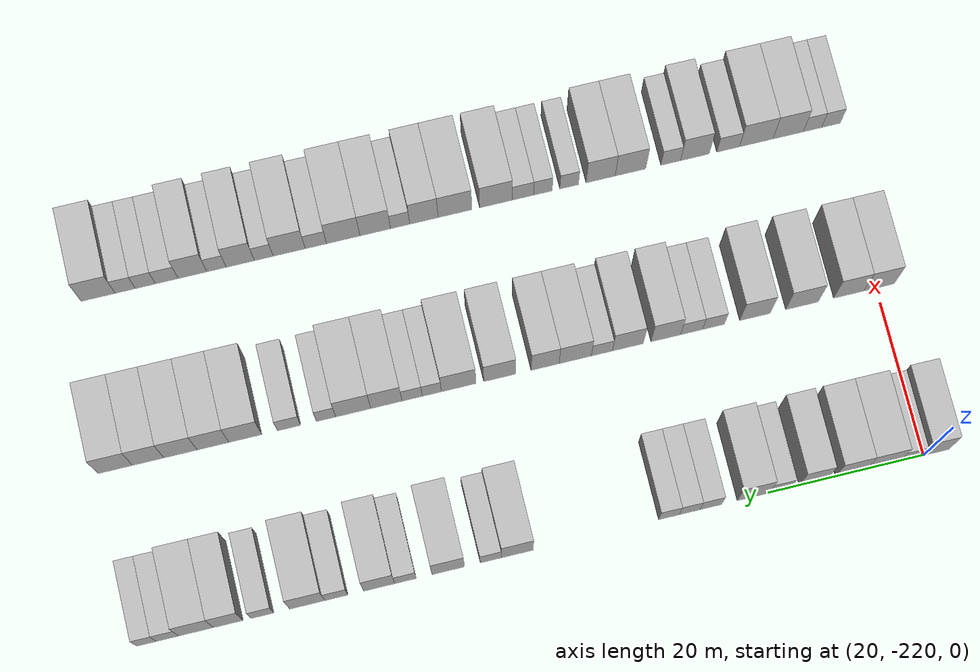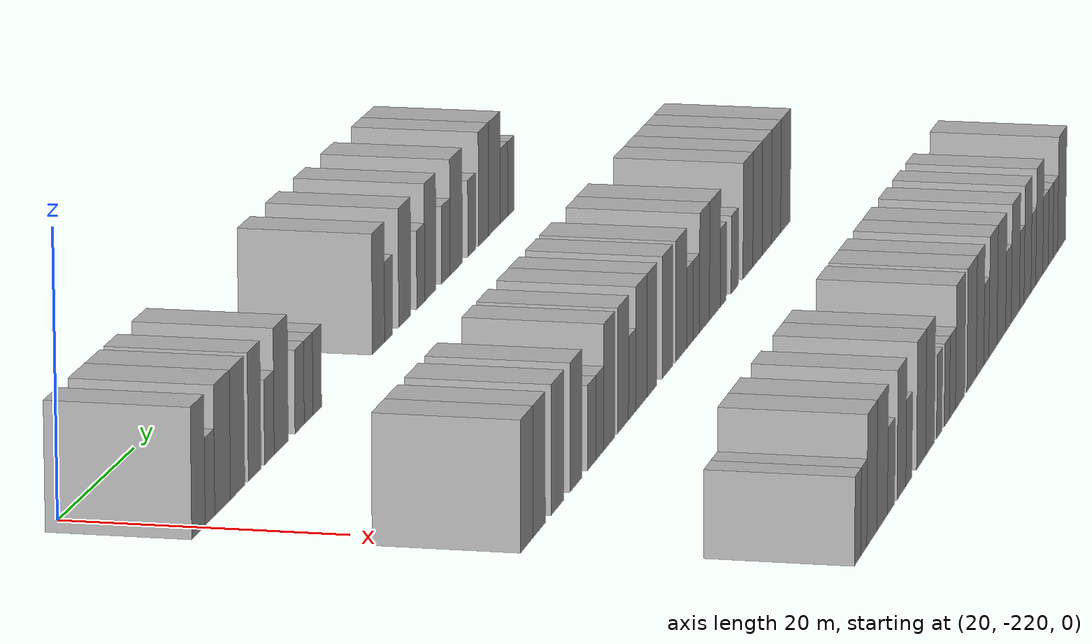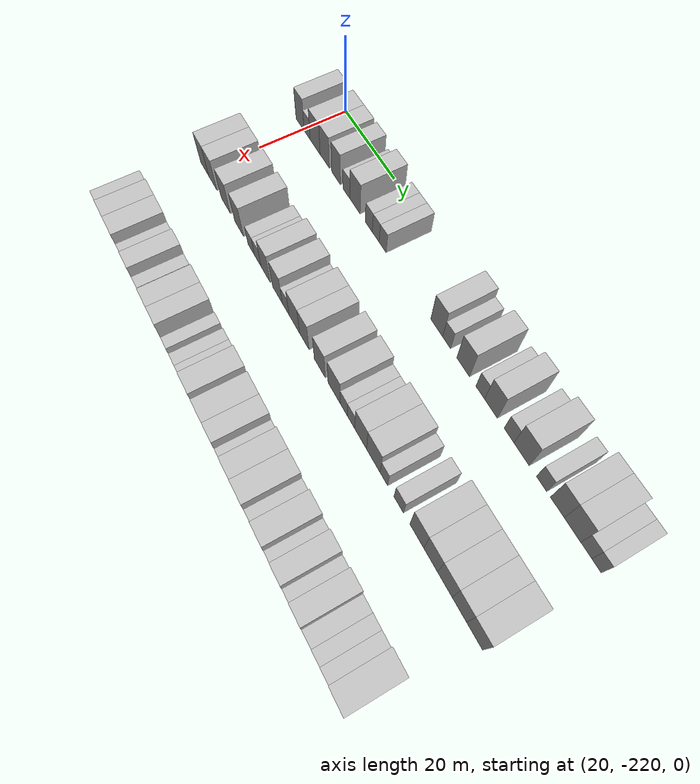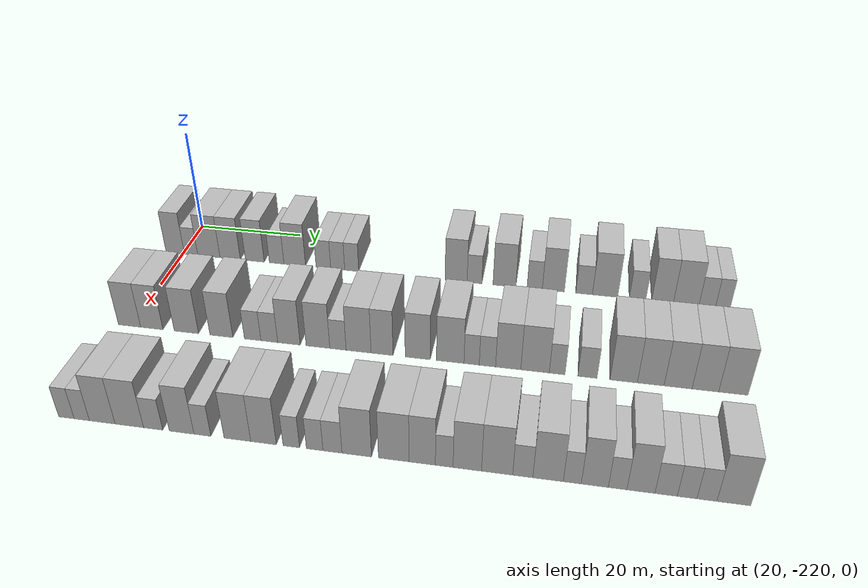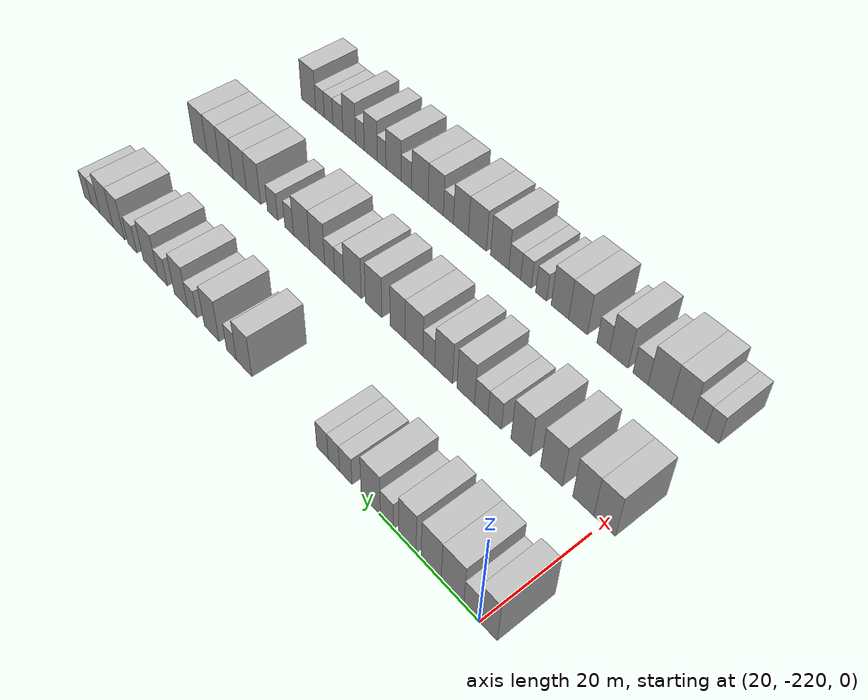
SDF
<sdf version="1.6">
 <world name="default">
  <model name="building_35">
   <static>1</static>
   <pose>25.0000 -221.4238 0 0.000000 0.000000 0.000000</pose>
   <link name="link">
    <pose>0 0 4.50 0 0 0</pose>
    <collision name="collision"><geometry><box><size>10.0000 3.6234 9.0000</size></box></geometry></collision>
    <visual name="visual">
     <cast_shadows>0</cast_shadows>
     <geometry><box><size>10.0000 3.6234 9.0000</size></box></geometry>
     <material>
      <script>
       <uri>model://HANNAS_wall/materials/scripts</uri>
       <uri>model://HANNAS_wall/materials/textures</uri>
       <name>vrc/HANNAS_wall</name>
      </script>
     </material>
    </visual>
   </link>
  </model>
  <model name="building_36">
   <static>1</static>
   <pose>25.0000 -218.2902 0 0.000000 0.000000 0.000000</pose>
   <link name="link">
    <pose>0 0 3.00 0 0 0</pose>
    <collision name="collision"><geometry><box><size>10.0000 2.6437 6.0000</size></box></geometry></collision>
    <visual name="visual">
     <cast_shadows>0</cast_shadows>
     <geometry><box><size>10.0000 2.6437 6.0000</size></box></geometry>
     <material>
      <script>
       <uri>model://HANNAS_wall/materials/scripts</uri>
       <uri>model://HANNAS_wall/materials/textures</uri>
       <name>vrc/HANNAS_wall</name>
      </script>
     </material>
    </visual>
   </link>
  </model>
  <model name="building_37">
   <static>1</static>
   <pose>25.0000 -214.7772 0 0.000000 0.000000 0.000000</pose>
   <link name="link">
    <pose>0 0 4.50 0 0 0</pose>
    <collision name="collision"><geometry><box><size>10.0000 4.3824 9.0000</size></box></geometry></collision>
    <visual name="visual">
     <cast_shadows>0</cast_shadows>
     <geometry><box><size>10.0000 4.3824 9.0000</size></box></geometry>
     <material>
      <script>
       <uri>model://HANNAS_wall/materials/scripts</uri>
       <uri>model://HANNAS_wall/materials/textures</uri>
       <name>vrc/HANNAS_wall</name>
      </script>
     </material>
    </visual>
   </link>
  </model>
  <model name="building_38">
   <static>1</static>
   <pose>25.0000 -210.5929 0 0.000000 0.000000 0.000000</pose>
   <link name="link">
    <pose>0 0 4.50 0 0 0</pose>
    <collision name="collision"><geometry><box><size>10.0000 3.9861 9.0000</size></box></geometry></collision>
    <visual name="visual">
     <cast_shadows>0</cast_shadows>
     <geometry><box><size>10.0000 3.9861 9.0000</size></box></geometry>
     <material>
      <script>
       <uri>model://HANNAS_wall/materials/scripts</uri>
       <uri>model://HANNAS_wall/materials/textures</uri>
       <name>vrc/HANNAS_wall</name>
      </script>
     </material>
    </visual>
   </link>
  </model>
  <model name="building_39">
   <static>1</static>
   <pose>25.0000 -205.7783 0 0.000000 0.000000 0.000000</pose>
   <link name="link">
    <pose>0 0 4.50 0 0 0</pose>
    <collision name="collision"><geometry><box><size>10.0000 3.6431 9.0000</size></box></geometry></collision>
    <visual name="visual">
     <cast_shadows>0</cast_shadows>
     <geometry><box><size>10.0000 3.6431 9.0000</size></box></geometry>
     <material>
      <script>
       <uri>model://HANNAS_wall/materials/scripts</uri>
       <uri>model://HANNAS_wall/materials/textures</uri>
       <name>vrc/HANNAS_wall</name>
      </script>
     </material>
    </visual>
   </link>
  </model>
  <model name="building_40">
   <static>1</static>
   <pose>25.0000 -201.5535 0 0.000000 0.000000 0.000000</pose>
   <link name="link">
    <pose>0 0 3.00 0 0 0</pose>
    <collision name="collision"><geometry><box><size>10.0000 2.8066 6.0000</size></box></geometry></collision>
    <visual name="visual">
     <cast_shadows>0</cast_shadows>
     <geometry><box><size>10.0000 2.8066 6.0000</size></box></geometry>
     <material>
      <script>
       <uri>model://HANNAS_wall/materials/scripts</uri>
       <uri>model://HANNAS_wall/materials/textures</uri>
       <name>vrc/HANNAS_wall</name>
      </script>
     </material>
    </visual>
   </link>
  </model>
  <model name="building_41">
   <static>1</static>
   <pose>25.0000 -198.0791 0 0.000000 0.000000 0.000000</pose>
   <link name="link">
    <pose>0 0 4.50 0 0 0</pose>
    <collision name="collision"><geometry><box><size>10.0000 4.1423 9.0000</size></box></geometry></collision>
    <visual name="visual">
     <cast_shadows>0</cast_shadows>
     <geometry><box><size>10.0000 4.1423 9.0000</size></box></geometry>
     <material>
      <script>
       <uri>model://HANNAS_wall/materials/scripts</uri>
       <uri>model://HANNAS_wall/materials/textures</uri>
       <name>vrc/HANNAS_wall</name>
      </script>
     </material>
    </visual>
   </link>
  </model>
  <model name="building_42">
   <static>1</static>
   <pose>25.0000 -192.6238 0 0.000000 0.000000 0.000000</pose>
   <link name="link">
    <pose>0 0 3.00 0 0 0</pose>
    <collision name="collision"><geometry><box><size>10.0000 2.7682 6.0000</size></box></geometry></collision>
    <visual name="visual">
     <cast_shadows>0</cast_shadows>
     <geometry><box><size>10.0000 2.7682 6.0000</size></box></geometry>
     <material>
      <script>
       <uri>model://HANNAS_wall/materials/scripts</uri>
       <uri>model://HANNAS_wall/materials/textures</uri>
       <name>vrc/HANNAS_wall</name>
      </script>
     </material>
    </visual>
   </link>
  </model>
  <model name="building_43">
   <static>1</static>
   <pose>25.0000 -189.9200 0 0.000000 0.000000 0.000000</pose>
   <link name="link">
    <pose>0 0 3.00 0 0 0</pose>
    <collision name="collision"><geometry><box><size>10.0000 2.6394 6.0000</size></box></geometry></collision>
    <visual name="visual">
     <cast_shadows>0</cast_shadows>
     <geometry><box><size>10.0000 2.6394 6.0000</size></box></geometry>
     <material>
      <script>
       <uri>model://HANNAS_wall/materials/scripts</uri>
       <uri>model://HANNAS_wall/materials/textures</uri>
       <name>vrc/HANNAS_wall</name>
      </script>
     </material>
    </visual>
   </link>
  </model>
  <model name="building_44">
   <static>1</static>
   <pose>25.0000 -187.2783 0 0.000000 0.000000 0.000000</pose>
   <link name="link">
    <pose>0 0 3.00 0 0 0</pose>
    <collision name="collision"><geometry><box><size>10.0000 2.6440 6.0000</size></box></geometry></collision>
    <visual name="visual">
     <cast_shadows>0</cast_shadows>
     <geometry><box><size>10.0000 2.6440 6.0000</size></box></geometry>
     <material>
      <script>
       <uri>model://HANNAS_wall/materials/scripts</uri>
       <uri>model://HANNAS_wall/materials/textures</uri>
       <name>vrc/HANNAS_wall</name>
      </script>
     </material>
    </visual>
   </link>
  </model>
  <model name="building_45">
   <static>1</static>
   <pose>25.0000 -167.9538 0 0.000000 0.000000 0.000000</pose>
   <link name="link">
    <pose>0 0 4.50 0 0 0</pose>
    <collision name="collision"><geometry><box><size>10.0000 4.0017 9.0000</size></box></geometry></collision>
    <visual name="visual">
     <cast_shadows>0</cast_shadows>
     <geometry><box><size>10.0000 4.0017 9.0000</size></box></geometry>
     <material>
      <script>
       <uri>model://HANNAS_wall/materials/scripts</uri>
       <uri>model://HANNAS_wall/materials/textures</uri>
       <name>vrc/HANNAS_wall</name>
      </script>
     </material>
    </visual>
   </link>
  </model>
  <model name="building_46">
   <static>1</static>
   <pose>25.0000 -164.6189 0 0.000000 0.000000 0.000000</pose>
   <link name="link">
    <pose>0 0 3.00 0 0 0</pose>
    <collision name="collision"><geometry><box><size>10.0000 2.6681 6.0000</size></box></geometry></collision>
    <visual name="visual">
     <cast_shadows>0</cast_shadows>
     <geometry><box><size>10.0000 2.6681 6.0000</size></box></geometry>
     <material>
      <script>
       <uri>model://HANNAS_wall/materials/scripts</uri>
       <uri>model://HANNAS_wall/materials/textures</uri>
       <name>vrc/HANNAS_wall</name>
      </script>
     </material>
    </visual>
   </link>
  </model>
  <model name="building_47">
   <static>1</static>
   <pose>25.0000 -159.2383 0 0.000000 0.000000 0.000000</pose>
   <link name="link">
    <pose>0 0 4.50 0 0 0</pose>
    <collision name="collision"><geometry><box><size>10.0000 4.0933 9.0000</size></box></geometry></collision>
    <visual name="visual">
     <cast_shadows>0</cast_shadows>
     <geometry><box><size>10.0000 4.0933 9.0000</size></box></geometry>
     <material>
      <script>
       <uri>model://HANNAS_wall/materials/scripts</uri>
       <uri>model://HANNAS_wall/materials/textures</uri>
       <name>vrc/HANNAS_wall</name>
      </script>
     </material>
    </visual>
   </link>
  </model>
  <model name="building_48">
   <static>1</static>
   <pose>25.0000 -153.8384 0 0.000000 0.000000 0.000000</pose>
   <link name="link">
    <pose>0 0 3.00 0 0 0</pose>
    <collision name="collision"><geometry><box><size>10.0000 2.7064 6.0000</size></box></geometry></collision>
    <visual name="visual">
     <cast_shadows>0</cast_shadows>
     <geometry><box><size>10.0000 2.7064 6.0000</size></box></geometry>
     <material>
      <script>
       <uri>model://HANNAS_wall/materials/scripts</uri>
       <uri>model://HANNAS_wall/materials/textures</uri>
       <name>vrc/HANNAS_wall</name>
      </script>
     </material>
    </visual>
   </link>
  </model>
  <model name="building_49">
   <static>1</static>
   <pose>25.0000 -150.5352 0 0.000000 0.000000 0.000000</pose>
   <link name="link">
    <pose>0 0 4.50 0 0 0</pose>
    <collision name="collision"><geometry><box><size>10.0000 3.9000 9.0000</size></box></geometry></collision>
    <visual name="visual">
     <cast_shadows>0</cast_shadows>
     <geometry><box><size>10.0000 3.9000 9.0000</size></box></geometry>
     <material>
      <script>
       <uri>model://HANNAS_wall/materials/scripts</uri>
       <uri>model://HANNAS_wall/materials/textures</uri>
       <name>vrc/HANNAS_wall</name>
      </script>
     </material>
    </visual>
   </link>
  </model>
  <model name="building_50">
   <static>1</static>
   <pose>25.0000 -145.1310 0 0.000000 0.000000 0.000000</pose>
   <link name="link">
    <pose>0 0 3.00 0 0 0</pose>
    <collision name="collision"><geometry><box><size>10.0000 2.9084 6.0000</size></box></geometry></collision>
    <visual name="visual">
     <cast_shadows>0</cast_shadows>
     <geometry><box><size>10.0000 2.9084 6.0000</size></box></geometry>
     <material>
      <script>
       <uri>model://HANNAS_wall/materials/scripts</uri>
       <uri>model://HANNAS_wall/materials/textures</uri>
       <name>vrc/HANNAS_wall</name>
      </script>
     </material>
    </visual>
   </link>
  </model>
  <model name="building_51">
   <static>1</static>
   <pose>25.0000 -141.4732 0 0.000000 0.000000 0.000000</pose>
   <link name="link">
    <pose>0 0 4.50 0 0 0</pose>
    <collision name="collision"><geometry><box><size>10.0000 4.4074 9.0000</size></box></geometry></collision>
    <visual name="visual">
     <cast_shadows>0</cast_shadows>
     <geometry><box><size>10.0000 4.4074 9.0000</size></box></geometry>
     <material>
      <script>
       <uri>model://HANNAS_wall/materials/scripts</uri>
       <uri>model://HANNAS_wall/materials/textures</uri>
       <name>vrc/HANNAS_wall</name>
      </script>
     </material>
    </visual>
   </link>
  </model>
  <model name="building_52">
   <static>1</static>
   <pose>25.0000 -135.8433 0 0.000000 0.000000 0.000000</pose>
   <link name="link">
    <pose>0 0 3.00 0 0 0</pose>
    <collision name="collision"><geometry><box><size>10.0000 2.8524 6.0000</size></box></geometry></collision>
    <visual name="visual">
     <cast_shadows>0</cast_shadows>
     <geometry><box><size>10.0000 2.8524 6.0000</size></box></geometry>
     <material>
      <script>
       <uri>model://HANNAS_wall/materials/scripts</uri>
       <uri>model://HANNAS_wall/materials/textures</uri>
       <name>vrc/HANNAS_wall</name>
      </script>
     </material>
    </visual>
   </link>
  </model>
  <model name="building_53">
   <static>1</static>
   <pose>25.0000 -131.5592 0 0.000000 0.000000 0.000000</pose>
   <link name="link">
    <pose>0 0 4.50 0 0 0</pose>
    <collision name="collision"><geometry><box><size>10.0000 3.7159 9.0000</size></box></geometry></collision>
    <visual name="visual">
     <cast_shadows>0</cast_shadows>
     <geometry><box><size>10.0000 3.7159 9.0000</size></box></geometry>
     <material>
      <script>
       <uri>model://HANNAS_wall/materials/scripts</uri>
       <uri>model://HANNAS_wall/materials/textures</uri>
       <name>vrc/HANNAS_wall</name>
      </script>
     </material>
    </visual>
   </link>
  </model>
  <model name="building_54">
   <static>1</static>
   <pose>25.0000 -127.5288 0 0.000000 0.000000 0.000000</pose>
   <link name="link">
    <pose>0 0 4.50 0 0 0</pose>
    <collision name="collision"><geometry><box><size>10.0000 4.3447 9.0000</size></box></geometry></collision>
    <visual name="visual">
     <cast_shadows>0</cast_shadows>
     <geometry><box><size>10.0000 4.3447 9.0000</size></box></geometry>
     <material>
      <script>
       <uri>model://HANNAS_wall/materials/scripts</uri>
       <uri>model://HANNAS_wall/materials/textures</uri>
       <name>vrc/HANNAS_wall</name>
      </script>
     </material>
    </visual>
   </link>
  </model>
  <model name="building_55">
   <static>1</static>
   <pose>25.0000 -123.9615 0 0.000000 0.000000 0.000000</pose>
   <link name="link">
    <pose>0 0 3.00 0 0 0</pose>
    <collision name="collision"><geometry><box><size>10.0000 2.7901 6.0000</size></box></geometry></collision>
    <visual name="visual">
     <cast_shadows>0</cast_shadows>
     <geometry><box><size>10.0000 2.7901 6.0000</size></box></geometry>
     <material>
      <script>
       <uri>model://HANNAS_wall/materials/scripts</uri>
       <uri>model://HANNAS_wall/materials/textures</uri>
       <name>vrc/HANNAS_wall</name>
      </script>
     </material>
    </visual>
   </link>
  </model>
  <model name="building_56">
   <static>1</static>
   <pose>25.0000 -121.3460 0 0.000000 0.000000 0.000000</pose>
   <link name="link">
    <pose>0 0 3.00 0 0 0</pose>
    <collision name="collision"><geometry><box><size>10.0000 2.4408 6.0000</size></box></geometry></collision>
    <visual name="visual">
     <cast_shadows>0</cast_shadows>
     <geometry><box><size>10.0000 2.4408 6.0000</size></box></geometry>
     <material>
      <script>
       <uri>model://HANNAS_wall/materials/scripts</uri>
       <uri>model://HANNAS_wall/materials/textures</uri>
       <name>vrc/HANNAS_wall</name>
      </script>
     </material>
    </visual>
   </link>
  </model>
  <model name="building_225">
   <static>1</static>
   <pose>47.0000 -220.3511 0 0.000000 0.000000 0.000000</pose>
   <link name="link">
    <pose>0 0 4.50 0 0 0</pose>
    <collision name="collision"><geometry><box><size>10.0000 3.9674 9.0000</size></box></geometry></collision>
    <visual name="visual">
     <cast_shadows>0</cast_shadows>
     <geometry><box><size>10.0000 3.9674 9.0000</size></box></geometry>
     <material>
      <script>
       <uri>model://HANNAS_wall/materials/scripts</uri>
       <uri>model://HANNAS_wall/materials/textures</uri>
       <name>vrc/HANNAS_wall</name>
      </script>
     </material>
    </visual>
   </link>
  </model>
  <model name="building_226">
   <static>1</static>
   <pose>47.0000 -216.3836 0 0.000000 0.000000 0.000000</pose>
   <link name="link">
    <pose>0 0 4.50 0 0 0</pose>
    <collision name="collision"><geometry><box><size>10.0000 3.9675 9.0000</size></box></geometry></collision>
    <visual name="visual">
     <cast_shadows>0</cast_shadows>
     <geometry><box><size>10.0000 3.9675 9.0000</size></box></geometry>
     <material>
      <script>
       <uri>model://HANNAS_wall/materials/scripts</uri>
       <uri>model://HANNAS_wall/materials/textures</uri>
       <name>vrc/HANNAS_wall</name>
      </script>
     </material>
    </visual>
   </link>
  </model>
  <model name="building_227">
   <static>1</static>
   <pose>47.0000 -210.2696 0 0.000000 0.000000 0.000000</pose>
   <link name="link">
    <pose>0 0 4.50 0 0 0</pose>
    <collision name="collision"><geometry><box><size>10.0000 4.2604 9.0000</size></box></geometry></collision>
    <visual name="visual">
     <cast_shadows>0</cast_shadows>
     <geometry><box><size>10.0000 4.2604 9.0000</size></box></geometry>
     <material>
      <script>
       <uri>model://HANNAS_wall/materials/scripts</uri>
       <uri>model://HANNAS_wall/materials/textures</uri>
       <name>vrc/HANNAS_wall</name>
      </script>
     </material>
    </visual>
   </link>
  </model>
  <model name="building_228">
   <static>1</static>
   <pose>47.0000 -204.1472 0 0.000000 0.000000 0.000000</pose>
   <link name="link">
    <pose>0 0 4.50 0 0 0</pose>
    <collision name="collision"><geometry><box><size>10.0000 3.9844 9.0000</size></box></geometry></collision>
    <visual name="visual">
     <cast_shadows>0</cast_shadows>
     <geometry><box><size>10.0000 3.9844 9.0000</size></box></geometry>
     <material>
      <script>
       <uri>model://HANNAS_wall/materials/scripts</uri>
       <uri>model://HANNAS_wall/materials/textures</uri>
       <name>vrc/HANNAS_wall</name>
      </script>
     </material>
    </visual>
   </link>
  </model>
  <model name="building_229">
   <static>1</static>
   <pose>47.0000 -198.7390 0 0.000000 0.000000 0.000000</pose>
   <link name="link">
    <pose>0 0 3.00 0 0 0</pose>
    <collision name="collision"><geometry><box><size>10.0000 2.8321 6.0000</size></box></geometry></collision>
    <visual name="visual">
     <cast_shadows>0</cast_shadows>
     <geometry><box><size>10.0000 2.8321 6.0000</size></box></geometry>
     <material>
      <script>
       <uri>model://HANNAS_wall/materials/scripts</uri>
       <uri>model://HANNAS_wall/materials/textures</uri>
       <name>vrc/HANNAS_wall</name>
      </script>
     </material>
    </visual>
   </link>
  </model>
  <model name="building_230">
   <static>1</static>
   <pose>47.0000 -195.8862 0 0.000000 0.000000 0.000000</pose>
   <link name="link">
    <pose>0 0 3.00 0 0 0</pose>
    <collision name="collision"><geometry><box><size>10.0000 2.8733 6.0000</size></box></geometry></collision>
    <visual name="visual">
     <cast_shadows>0</cast_shadows>
     <geometry><box><size>10.0000 2.8733 6.0000</size></box></geometry>
     <material>
      <script>
       <uri>model://HANNAS_wall/materials/scripts</uri>
       <uri>model://HANNAS_wall/materials/textures</uri>
       <name>vrc/HANNAS_wall</name>
      </script>
     </material>
    </visual>
   </link>
  </model>
  <model name="building_231">
   <static>1</static>
   <pose>47.0000 -192.5371 0 0.000000 0.000000 0.000000</pose>
   <link name="link">
    <pose>0 0 4.50 0 0 0</pose>
    <collision name="collision"><geometry><box><size>10.0000 3.8249 9.0000</size></box></geometry></collision>
    <visual name="visual">
     <cast_shadows>0</cast_shadows>
     <geometry><box><size>10.0000 3.8249 9.0000</size></box></geometry>
     <material>
      <script>
       <uri>model://HANNAS_wall/materials/scripts</uri>
       <uri>model://HANNAS_wall/materials/textures</uri>
       <name>vrc/HANNAS_wall</name>
      </script>
     </material>
    </visual>
   </link>
  </model>
  <model name="building_232">
   <static>1</static>
   <pose>47.0000 -187.6268 0 0.000000 0.000000 0.000000</pose>
   <link name="link">
    <pose>0 0 4.50 0 0 0</pose>
    <collision name="collision"><geometry><box><size>10.0000 3.9958 9.0000</size></box></geometry></collision>
    <visual name="visual">
     <cast_shadows>0</cast_shadows>
     <geometry><box><size>10.0000 3.9958 9.0000</size></box></geometry>
     <material>
      <script>
       <uri>model://HANNAS_wall/materials/scripts</uri>
       <uri>model://HANNAS_wall/materials/textures</uri>
       <name>vrc/HANNAS_wall</name>
      </script>
     </material>
    </visual>
   </link>
  </model>
  <model name="building_233">
   <static>1</static>
   <pose>47.0000 -184.2656 0 0.000000 0.000000 0.000000</pose>
   <link name="link">
    <pose>0 0 3.00 0 0 0</pose>
    <collision name="collision"><geometry><box><size>10.0000 2.7266 6.0000</size></box></geometry></collision>
    <visual name="visual">
     <cast_shadows>0</cast_shadows>
     <geometry><box><size>10.0000 2.7266 6.0000</size></box></geometry>
     <material>
      <script>
       <uri>model://HANNAS_wall/materials/scripts</uri>
       <uri>model://HANNAS_wall/materials/textures</uri>
       <name>vrc/HANNAS_wall</name>
      </script>
     </material>
    </visual>
   </link>
  </model>
  <model name="building_234">
   <static>1</static>
   <pose>47.0000 -180.8236 0 0.000000 0.000000 0.000000</pose>
   <link name="link">
    <pose>0 0 4.50 0 0 0</pose>
    <collision name="collision"><geometry><box><size>10.0000 4.1575 9.0000</size></box></geometry></collision>
    <visual name="visual">
     <cast_shadows>0</cast_shadows>
     <geometry><box><size>10.0000 4.1575 9.0000</size></box></geometry>
     <material>
      <script>
       <uri>model://HANNAS_wall/materials/scripts</uri>
       <uri>model://HANNAS_wall/materials/textures</uri>
       <name>vrc/HANNAS_wall</name>
      </script>
     </material>
    </visual>
   </link>
  </model>
  <model name="building_235">
   <static>1</static>
   <pose>47.0000 -176.9339 0 0.000000 0.000000 0.000000</pose>
   <link name="link">
    <pose>0 0 4.50 0 0 0</pose>
    <collision name="collision"><geometry><box><size>10.0000 3.6220 9.0000</size></box></geometry></collision>
    <visual name="visual">
     <cast_shadows>0</cast_shadows>
     <geometry><box><size>10.0000 3.6220 9.0000</size></box></geometry>
     <material>
      <script>
       <uri>model://HANNAS_wall/materials/scripts</uri>
       <uri>model://HANNAS_wall/materials/textures</uri>
       <name>vrc/HANNAS_wall</name>
      </script>
     </material>
    </visual>
   </link>
  </model>
  <model name="building_236">
   <static>1</static>
   <pose>47.0000 -171.0738 0 0.000000 0.000000 0.000000</pose>
   <link name="link">
    <pose>0 0 4.50 0 0 0</pose>
    <collision name="collision"><geometry><box><size>10.0000 4.0983 9.0000</size></box></geometry></collision>
    <visual name="visual">
     <cast_shadows>0</cast_shadows>
     <geometry><box><size>10.0000 4.0983 9.0000</size></box></geometry>
     <material>
      <script>
       <uri>model://HANNAS_wall/materials/scripts</uri>
       <uri>model://HANNAS_wall/materials/textures</uri>
       <name>vrc/HANNAS_wall</name>
      </script>
     </material>
    </visual>
   </link>
  </model>
  <model name="building_237">
   <static>1</static>
   <pose>47.0000 -165.8048 0 0.000000 0.000000 0.000000</pose>
   <link name="link">
    <pose>0 0 4.50 0 0 0</pose>
    <collision name="collision"><geometry><box><size>10.0000 4.4396 9.0000</size></box></geometry></collision>
    <visual name="visual">
     <cast_shadows>0</cast_shadows>
     <geometry><box><size>10.0000 4.4396 9.0000</size></box></geometry>
     <material>
      <script>
       <uri>model://HANNAS_wall/materials/scripts</uri>
       <uri>model://HANNAS_wall/materials/textures</uri>
       <name>vrc/HANNAS_wall</name>
      </script>
     </material>
    </visual>
   </link>
  </model>
  <model name="building_238">
   <static>1</static>
   <pose>47.0000 -162.3593 0 0.000000 0.000000 0.000000</pose>
   <link name="link">
    <pose>0 0 3.00 0 0 0</pose>
    <collision name="collision"><geometry><box><size>10.0000 2.4514 6.0000</size></box></geometry></collision>
    <visual name="visual">
     <cast_shadows>0</cast_shadows>
     <geometry><box><size>10.0000 2.4514 6.0000</size></box></geometry>
     <material>
      <script>
       <uri>model://HANNAS_wall/materials/scripts</uri>
       <uri>model://HANNAS_wall/materials/textures</uri>
       <name>vrc/HANNAS_wall</name>
      </script>
     </material>
    </visual>
   </link>
  </model>
  <model name="building_239">
   <static>1</static>
   <pose>47.0000 -159.8306 0 0.000000 0.000000 0.000000</pose>
   <link name="link">
    <pose>0 0 3.00 0 0 0</pose>
    <collision name="collision"><geometry><box><size>10.0000 2.6060 6.0000</size></box></geometry></collision>
    <visual name="visual">
     <cast_shadows>0</cast_shadows>
     <geometry><box><size>10.0000 2.6060 6.0000</size></box></geometry>
     <material>
      <script>
       <uri>model://HANNAS_wall/materials/scripts</uri>
       <uri>model://HANNAS_wall/materials/textures</uri>
       <name>vrc/HANNAS_wall</name>
      </script>
     </material>
    </visual>
   </link>
  </model>
  <model name="building_240">
   <static>1</static>
   <pose>47.0000 -156.5290 0 0.000000 0.000000 0.000000</pose>
   <link name="link">
    <pose>0 0 4.50 0 0 0</pose>
    <collision name="collision"><geometry><box><size>10.0000 3.9973 9.0000</size></box></geometry></collision>
    <visual name="visual">
     <cast_shadows>0</cast_shadows>
     <geometry><box><size>10.0000 3.9973 9.0000</size></box></geometry>
     <material>
      <script>
       <uri>model://HANNAS_wall/materials/scripts</uri>
       <uri>model://HANNAS_wall/materials/textures</uri>
       <name>vrc/HANNAS_wall</name>
      </script>
     </material>
    </visual>
   </link>
  </model>
  <model name="building_241">
   <static>1</static>
   <pose>47.0000 -152.2860 0 0.000000 0.000000 0.000000</pose>
   <link name="link">
    <pose>0 0 4.50 0 0 0</pose>
    <collision name="collision"><geometry><box><size>10.0000 4.4886 9.0000</size></box></geometry></collision>
    <visual name="visual">
     <cast_shadows>0</cast_shadows>
     <geometry><box><size>10.0000 4.4886 9.0000</size></box></geometry>
     <material>
      <script>
       <uri>model://HANNAS_wall/materials/scripts</uri>
       <uri>model://HANNAS_wall/materials/textures</uri>
       <name>vrc/HANNAS_wall</name>
      </script>
     </material>
    </visual>
   </link>
  </model>
  <model name="building_242">
   <static>1</static>
   <pose>47.0000 -148.8124 0 0.000000 0.000000 0.000000</pose>
   <link name="link">
    <pose>0 0 3.00 0 0 0</pose>
    <collision name="collision"><geometry><box><size>10.0000 2.4586 6.0000</size></box></geometry></collision>
    <visual name="visual">
     <cast_shadows>0</cast_shadows>
     <geometry><box><size>10.0000 2.4586 6.0000</size></box></geometry>
     <material>
      <script>
       <uri>model://HANNAS_wall/materials/scripts</uri>
       <uri>model://HANNAS_wall/materials/textures</uri>
       <name>vrc/HANNAS_wall</name>
      </script>
     </material>
    </visual>
   </link>
  </model>
  <model name="building_243">
   <static>1</static>
   <pose>47.0000 -144.0973 0 0.000000 0.000000 0.000000</pose>
   <link name="link">
    <pose>0 0 3.00 0 0 0</pose>
    <collision name="collision"><geometry><box><size>10.0000 2.9718 6.0000</size></box></geometry></collision>
    <visual name="visual">
     <cast_shadows>0</cast_shadows>
     <geometry><box><size>10.0000 2.9718 6.0000</size></box></geometry>
     <material>
      <script>
       <uri>model://HANNAS_wall/materials/scripts</uri>
       <uri>model://HANNAS_wall/materials/textures</uri>
       <name>vrc/HANNAS_wall</name>
      </script>
     </material>
    </visual>
   </link>
  </model>
  <model name="building_244">
   <static>1</static>
   <pose>47.0000 -138.5148 0 0.000000 0.000000 0.000000</pose>
   <link name="link">
    <pose>0 0 4.50 0 0 0</pose>
    <collision name="collision"><geometry><box><size>10.0000 4.1932 9.0000</size></box></geometry></collision>
    <visual name="visual">
     <cast_shadows>0</cast_shadows>
     <geometry><box><size>10.0000 4.1932 9.0000</size></box></geometry>
     <material>
      <script>
       <uri>model://HANNAS_wall/materials/scripts</uri>
       <uri>model://HANNAS_wall/materials/textures</uri>
       <name>vrc/HANNAS_wall</name>
      </script>
     </material>
    </visual>
   </link>
  </model>
  <model name="building_245">
   <static>1</static>
   <pose>47.0000 -134.3958 0 0.000000 0.000000 0.000000</pose>
   <link name="link">
    <pose>0 0 4.50 0 0 0</pose>
    <collision name="collision"><geometry><box><size>10.0000 4.0447 9.0000</size></box></geometry></collision>
    <visual name="visual">
     <cast_shadows>0</cast_shadows>
     <geometry><box><size>10.0000 4.0447 9.0000</size></box></geometry>
     <material>
      <script>
       <uri>model://HANNAS_wall/materials/scripts</uri>
       <uri>model://HANNAS_wall/materials/textures</uri>
       <name>vrc/HANNAS_wall</name>
      </script>
     </material>
    </visual>
   </link>
  </model>
  <model name="building_246">
   <static>1</static>
   <pose>47.0000 -130.2643 0 0.000000 0.000000 0.000000</pose>
   <link name="link">
    <pose>0 0 4.50 0 0 0</pose>
    <collision name="collision"><geometry><box><size>10.0000 4.2184 9.0000</size></box></geometry></collision>
    <visual name="visual">
     <cast_shadows>0</cast_shadows>
     <geometry><box><size>10.0000 4.2184 9.0000</size></box></geometry>
     <material>
      <script>
       <uri>model://HANNAS_wall/materials/scripts</uri>
       <uri>model://HANNAS_wall/materials/textures</uri>
       <name>vrc/HANNAS_wall</name>
      </script>
     </material>
    </visual>
   </link>
  </model>
  <model name="building_247">
   <static>1</static>
   <pose>47.0000 -126.1689 0 0.000000 0.000000 0.000000</pose>
   <link name="link">
    <pose>0 0 4.50 0 0 0</pose>
    <collision name="collision"><geometry><box><size>10.0000 3.9724 9.0000</size></box></geometry></collision>
    <visual name="visual">
     <cast_shadows>0</cast_shadows>
     <geometry><box><size>10.0000 3.9724 9.0000</size></box></geometry>
     <material>
      <script>
       <uri>model://HANNAS_wall/materials/scripts</uri>
       <uri>model://HANNAS_wall/materials/textures</uri>
       <name>vrc/HANNAS_wall</name>
      </script>
     </material>
    </visual>
   </link>
  </model>
  <model name="building_248">
   <static>1</static>
   <pose>47.0000 -122.0031 0 0.000000 0.000000 0.000000</pose>
   <link name="link">
    <pose>0 0 4.50 0 0 0</pose>
    <collision name="collision"><geometry><box><size>10.0000 4.3593 9.0000</size></box></geometry></collision>
    <visual name="visual">
     <cast_shadows>0</cast_shadows>
     <geometry><box><size>10.0000 4.3593 9.0000</size></box></geometry>
     <material>
      <script>
       <uri>model://HANNAS_wall/materials/scripts</uri>
       <uri>model://HANNAS_wall/materials/textures</uri>
       <name>vrc/HANNAS_wall</name>
      </script>
     </material>
    </visual>
   </link>
  </model>
  <model name="building_411">
   <static>1</static>
   <pose>69.0000 -220.0755 0 0.000000 0.000000 0.000000</pose>
   <link name="link">
    <pose>0 0 3.00 0 0 0</pose>
    <collision name="collision"><geometry><box><size>10.0000 2.4644 6.0000</size></box></geometry></collision>
    <visual name="visual">
     <cast_shadows>0</cast_shadows>
     <geometry><box><size>10.0000 2.4644 6.0000</size></box></geometry>
     <material>
      <script>
       <uri>model://HANNAS_wall/materials/scripts</uri>
       <uri>model://HANNAS_wall/materials/textures</uri>
       <name>vrc/HANNAS_wall</name>
      </script>
     </material>
    </visual>
   </link>
  </model>
  <model name="building_412">
   <static>1</static>
   <pose>69.0000 -217.6280 0 0.000000 0.000000 0.000000</pose>
   <link name="link">
    <pose>0 0 3.00 0 0 0</pose>
    <collision name="collision"><geometry><box><size>10.0000 2.4305 6.0000</size></box></geometry></collision>
    <visual name="visual">
     <cast_shadows>0</cast_shadows>
     <geometry><box><size>10.0000 2.4305 6.0000</size></box></geometry>
     <material>
      <script>
       <uri>model://HANNAS_wall/materials/scripts</uri>
       <uri>model://HANNAS_wall/materials/textures</uri>
       <name>vrc/HANNAS_wall</name>
      </script>
     </material>
    </visual>
   </link>
  </model>
  <model name="building_413">
   <static>1</static>
   <pose>69.0000 -214.4008 0 0.000000 0.000000 0.000000</pose>
   <link name="link">
    <pose>0 0 4.50 0 0 0</pose>
    <collision name="collision"><geometry><box><size>10.0000 4.0240 9.0000</size></box></geometry></collision>
    <visual name="visual">
     <cast_shadows>0</cast_shadows>
     <geometry><box><size>10.0000 4.0240 9.0000</size></box></geometry>
     <material>
      <script>
       <uri>model://HANNAS_wall/materials/scripts</uri>
       <uri>model://HANNAS_wall/materials/textures</uri>
       <name>vrc/HANNAS_wall</name>
      </script>
     </material>
    </visual>
   </link>
  </model>
  <model name="building_414">
   <static>1</static>
   <pose>69.0000 -210.1627 0 0.000000 0.000000 0.000000</pose>
   <link name="link">
    <pose>0 0 4.50 0 0 0</pose>
    <collision name="collision"><geometry><box><size>10.0000 4.4522 9.0000</size></box></geometry></collision>
    <visual name="visual">
     <cast_shadows>0</cast_shadows>
     <geometry><box><size>10.0000 4.4522 9.0000</size></box></geometry>
     <material>
      <script>
       <uri>model://HANNAS_wall/materials/scripts</uri>
       <uri>model://HANNAS_wall/materials/textures</uri>
       <name>vrc/HANNAS_wall</name>
      </script>
     </material>
    </visual>
   </link>
  </model>
  <model name="building_415">
   <static>1</static>
   <pose>69.0000 -206.4481 0 0.000000 0.000000 0.000000</pose>
   <link name="link">
    <pose>0 0 3.00 0 0 0</pose>
    <collision name="collision"><geometry><box><size>10.0000 2.9770 6.0000</size></box></geometry></collision>
    <visual name="visual">
     <cast_shadows>0</cast_shadows>
     <geometry><box><size>10.0000 2.9770 6.0000</size></box></geometry>
     <material>
      <script>
       <uri>model://HANNAS_wall/materials/scripts</uri>
       <uri>model://HANNAS_wall/materials/textures</uri>
       <name>vrc/HANNAS_wall</name>
      </script>
     </material>
    </visual>
   </link>
  </model>
  <model name="building_416">
   <static>1</static>
   <pose>69.0000 -202.0629 0 0.000000 0.000000 0.000000</pose>
   <link name="link">
    <pose>0 0 4.50 0 0 0</pose>
    <collision name="collision"><geometry><box><size>10.0000 3.7934 9.0000</size></box></geometry></collision>
    <visual name="visual">
     <cast_shadows>0</cast_shadows>
     <geometry><box><size>10.0000 3.7934 9.0000</size></box></geometry>
     <material>
      <script>
       <uri>model://HANNAS_wall/materials/scripts</uri>
       <uri>model://HANNAS_wall/materials/textures</uri>
       <name>vrc/HANNAS_wall</name>
      </script>
     </material>
    </visual>
   </link>
  </model>
  <model name="building_417">
   <static>1</static>
   <pose>69.0000 -198.8758 0 0.000000 0.000000 0.000000</pose>
   <link name="link">
    <pose>0 0 3.00 0 0 0</pose>
    <collision name="collision"><geometry><box><size>10.0000 2.5809 6.0000</size></box></geometry></collision>
    <visual name="visual">
     <cast_shadows>0</cast_shadows>
     <geometry><box><size>10.0000 2.5809 6.0000</size></box></geometry>
     <material>
      <script>
       <uri>model://HANNAS_wall/materials/scripts</uri>
       <uri>model://HANNAS_wall/materials/textures</uri>
       <name>vrc/HANNAS_wall</name>
      </script>
     </material>
    </visual>
   </link>
  </model>
  <model name="building_418">
   <static>1</static>
   <pose>69.0000 -193.5782 0 0.000000 0.000000 0.000000</pose>
   <link name="link">
    <pose>0 0 4.50 0 0 0</pose>
    <collision name="collision"><geometry><box><size>10.0000 4.0142 9.0000</size></box></geometry></collision>
    <visual name="visual">
     <cast_shadows>0</cast_shadows>
     <geometry><box><size>10.0000 4.0142 9.0000</size></box></geometry>
     <material>
      <script>
       <uri>model://HANNAS_wall/materials/scripts</uri>
       <uri>model://HANNAS_wall/materials/textures</uri>
       <name>vrc/HANNAS_wall</name>
      </script>
     </material>
    </visual>
   </link>
  </model>
  <model name="building_419">
   <static>1</static>
   <pose>69.0000 -189.6528 0 0.000000 0.000000 0.000000</pose>
   <link name="link">
    <pose>0 0 4.50 0 0 0</pose>
    <collision name="collision"><geometry><box><size>10.0000 3.8366 9.0000</size></box></geometry></collision>
    <visual name="visual">
     <cast_shadows>0</cast_shadows>
     <geometry><box><size>10.0000 3.8366 9.0000</size></box></geometry>
     <material>
      <script>
       <uri>model://HANNAS_wall/materials/scripts</uri>
       <uri>model://HANNAS_wall/materials/textures</uri>
       <name>vrc/HANNAS_wall</name>
      </script>
     </material>
    </visual>
   </link>
  </model>
  <model name="building_420">
   <static>1</static>
   <pose>69.0000 -185.5120 0 0.000000 0.000000 0.000000</pose>
   <link name="link">
    <pose>0 0 3.00 0 0 0</pose>
    <collision name="collision"><geometry><box><size>10.0000 2.4450 6.0000</size></box></geometry></collision>
    <visual name="visual">
     <cast_shadows>0</cast_shadows>
     <geometry><box><size>10.0000 2.4450 6.0000</size></box></geometry>
     <material>
      <script>
       <uri>model://HANNAS_wall/materials/scripts</uri>
       <uri>model://HANNAS_wall/materials/textures</uri>
       <name>vrc/HANNAS_wall</name>
      </script>
     </material>
    </visual>
   </link>
  </model>
  <model name="building_421">
   <static>1</static>
   <pose>69.0000 -182.0715 0 0.000000 0.000000 0.000000</pose>
   <link name="link">
    <pose>0 0 3.00 0 0 0</pose>
    <collision name="collision"><geometry><box><size>10.0000 2.4361 6.0000</size></box></geometry></collision>
    <visual name="visual">
     <cast_shadows>0</cast_shadows>
     <geometry><box><size>10.0000 2.4361 6.0000</size></box></geometry>
     <material>
      <script>
       <uri>model://HANNAS_wall/materials/scripts</uri>
       <uri>model://HANNAS_wall/materials/textures</uri>
       <name>vrc/HANNAS_wall</name>
      </script>
     </material>
    </visual>
   </link>
  </model>
  <model name="building_422">
   <static>1</static>
   <pose>69.0000 -179.4627 0 0.000000 0.000000 0.000000</pose>
   <link name="link">
    <pose>0 0 3.00 0 0 0</pose>
    <collision name="collision"><geometry><box><size>10.0000 2.7815 6.0000</size></box></geometry></collision>
    <visual name="visual">
     <cast_shadows>0</cast_shadows>
     <geometry><box><size>10.0000 2.7815 6.0000</size></box></geometry>
     <material>
      <script>
       <uri>model://HANNAS_wall/materials/scripts</uri>
       <uri>model://HANNAS_wall/materials/textures</uri>
       <name>vrc/HANNAS_wall</name>
      </script>
     </material>
    </visual>
   </link>
  </model>
  <model name="building_423">
   <static>1</static>
   <pose>69.0000 -175.9299 0 0.000000 0.000000 0.000000</pose>
   <link name="link">
    <pose>0 0 4.50 0 0 0</pose>
    <collision name="collision"><geometry><box><size>10.0000 4.2841 9.0000</size></box></geometry></collision>
    <visual name="visual">
     <cast_shadows>0</cast_shadows>
     <geometry><box><size>10.0000 4.2841 9.0000</size></box></geometry>
     <material>
      <script>
       <uri>model://HANNAS_wall/materials/scripts</uri>
       <uri>model://HANNAS_wall/materials/textures</uri>
       <name>vrc/HANNAS_wall</name>
      </script>
     </material>
    </visual>
   </link>
  </model>
  <model name="building_424">
   <static>1</static>
   <pose>69.0000 -170.5854 0 0.000000 0.000000 0.000000</pose>
   <link name="link">
    <pose>0 0 4.50 0 0 0</pose>
    <collision name="collision"><geometry><box><size>10.0000 4.4049 9.0000</size></box></geometry></collision>
    <visual name="visual">
     <cast_shadows>0</cast_shadows>
     <geometry><box><size>10.0000 4.4049 9.0000</size></box></geometry>
     <material>
      <script>
       <uri>model://HANNAS_wall/materials/scripts</uri>
       <uri>model://HANNAS_wall/materials/textures</uri>
       <name>vrc/HANNAS_wall</name>
      </script>
     </material>
    </visual>
   </link>
  </model>
  <model name="building_425">
   <static>1</static>
   <pose>69.0000 -166.5274 0 0.000000 0.000000 0.000000</pose>
   <link name="link">
    <pose>0 0 4.50 0 0 0</pose>
    <collision name="collision"><geometry><box><size>10.0000 3.7112 9.0000</size></box></geometry></collision>
    <visual name="visual">
     <cast_shadows>0</cast_shadows>
     <geometry><box><size>10.0000 3.7112 9.0000</size></box></geometry>
     <material>
      <script>
       <uri>model://HANNAS_wall/materials/scripts</uri>
       <uri>model://HANNAS_wall/materials/textures</uri>
       <name>vrc/HANNAS_wall</name>
      </script>
     </material>
    </visual>
   </link>
  </model>
  <model name="building_426">
   <static>1</static>
   <pose>69.0000 -163.4237 0 0.000000 0.000000 0.000000</pose>
   <link name="link">
    <pose>0 0 3.00 0 0 0</pose>
    <collision name="collision"><geometry><box><size>10.0000 2.4960 6.0000</size></box></geometry></collision>
    <visual name="visual">
     <cast_shadows>0</cast_shadows>
     <geometry><box><size>10.0000 2.4960 6.0000</size></box></geometry>
     <material>
      <script>
       <uri>model://HANNAS_wall/materials/scripts</uri>
       <uri>model://HANNAS_wall/materials/textures</uri>
       <name>vrc/HANNAS_wall</name>
      </script>
     </material>
    </visual>
   </link>
  </model>
  <model name="building_427">
   <static>1</static>
   <pose>69.0000 -160.1863 0 0.000000 0.000000 0.000000</pose>
   <link name="link">
    <pose>0 0 4.50 0 0 0</pose>
    <collision name="collision"><geometry><box><size>10.0000 3.9790 9.0000</size></box></geometry></collision>
    <visual name="visual">
     <cast_shadows>0</cast_shadows>
     <geometry><box><size>10.0000 3.9790 9.0000</size></box></geometry>
     <material>
      <script>
       <uri>model://HANNAS_wall/materials/scripts</uri>
       <uri>model://HANNAS_wall/materials/textures</uri>
       <name>vrc/HANNAS_wall</name>
      </script>
     </material>
    </visual>
   </link>
  </model>
  <model name="building_428">
   <static>1</static>
   <pose>69.0000 -156.0284 0 0.000000 0.000000 0.000000</pose>
   <link name="link">
    <pose>0 0 4.50 0 0 0</pose>
    <collision name="collision"><geometry><box><size>10.0000 4.3366 9.0000</size></box></geometry></collision>
    <visual name="visual">
     <cast_shadows>0</cast_shadows>
     <geometry><box><size>10.0000 4.3366 9.0000</size></box></geometry>
     <material>
      <script>
       <uri>model://HANNAS_wall/materials/scripts</uri>
       <uri>model://HANNAS_wall/materials/textures</uri>
       <name>vrc/HANNAS_wall</name>
      </script>
     </material>
    </visual>
   </link>
  </model>
  <model name="building_429">
   <static>1</static>
   <pose>69.0000 -152.4753 0 0.000000 0.000000 0.000000</pose>
   <link name="link">
    <pose>0 0 3.00 0 0 0</pose>
    <collision name="collision"><geometry><box><size>10.0000 2.7696 6.0000</size></box></geometry></collision>
    <visual name="visual">
     <cast_shadows>0</cast_shadows>
     <geometry><box><size>10.0000 2.7696 6.0000</size></box></geometry>
     <material>
      <script>
       <uri>model://HANNAS_wall/materials/scripts</uri>
       <uri>model://HANNAS_wall/materials/textures</uri>
       <name>vrc/HANNAS_wall</name>
      </script>
     </material>
    </visual>
   </link>
  </model>
  <model name="building_430">
   <static>1</static>
   <pose>69.0000 -149.0062 0 0.000000 0.000000 0.000000</pose>
   <link name="link">
    <pose>0 0 4.50 0 0 0</pose>
    <collision name="collision"><geometry><box><size>10.0000 4.1687 9.0000</size></box></geometry></collision>
    <visual name="visual">
     <cast_shadows>0</cast_shadows>
     <geometry><box><size>10.0000 4.1687 9.0000</size></box></geometry>
     <material>
      <script>
       <uri>model://HANNAS_wall/materials/scripts</uri>
       <uri>model://HANNAS_wall/materials/textures</uri>
       <name>vrc/HANNAS_wall</name>
      </script>
     </material>
    </visual>
   </link>
  </model>
  <model name="building_431">
   <static>1</static>
   <pose>69.0000 -145.7079 0 0.000000 0.000000 0.000000</pose>
   <link name="link">
    <pose>0 0 3.00 0 0 0</pose>
    <collision name="collision"><geometry><box><size>10.0000 2.4278 6.0000</size></box></geometry></collision>
    <visual name="visual">
     <cast_shadows>0</cast_shadows>
     <geometry><box><size>10.0000 2.4278 6.0000</size></box></geometry>
     <material>
      <script>
       <uri>model://HANNAS_wall/materials/scripts</uri>
       <uri>model://HANNAS_wall/materials/textures</uri>
       <name>vrc/HANNAS_wall</name>
      </script>
     </material>
    </visual>
   </link>
  </model>
  <model name="building_432">
   <static>1</static>
   <pose>69.0000 -142.6718 0 0.000000 0.000000 0.000000</pose>
   <link name="link">
    <pose>0 0 4.50 0 0 0</pose>
    <collision name="collision"><geometry><box><size>10.0000 3.6444 9.0000</size></box></geometry></collision>
    <visual name="visual">
     <cast_shadows>0</cast_shadows>
     <geometry><box><size>10.0000 3.6444 9.0000</size></box></geometry>
     <material>
      <script>
       <uri>model://HANNAS_wall/materials/scripts</uri>
       <uri>model://HANNAS_wall/materials/textures</uri>
       <name>vrc/HANNAS_wall</name>
      </script>
     </material>
    </visual>
   </link>
  </model>
  <model name="building_433">
   <static>1</static>
   <pose>69.0000 -139.6065 0 0.000000 0.000000 0.000000</pose>
   <link name="link">
    <pose>0 0 3.00 0 0 0</pose>
    <collision name="collision"><geometry><box><size>10.0000 2.4862 6.0000</size></box></geometry></collision>
    <visual name="visual">
     <cast_shadows>0</cast_shadows>
     <geometry><box><size>10.0000 2.4862 6.0000</size></box></geometry>
     <material>
      <script>
       <uri>model://HANNAS_wall/materials/scripts</uri>
       <uri>model://HANNAS_wall/materials/textures</uri>
       <name>vrc/HANNAS_wall</name>
      </script>
     </material>
    </visual>
   </link>
  </model>
  <model name="building_434">
   <static>1</static>
   <pose>69.0000 -136.5031 0 0.000000 0.000000 0.000000</pose>
   <link name="link">
    <pose>0 0 4.50 0 0 0</pose>
    <collision name="collision"><geometry><box><size>10.0000 3.7206 9.0000</size></box></geometry></collision>
    <visual name="visual">
     <cast_shadows>0</cast_shadows>
     <geometry><box><size>10.0000 3.7206 9.0000</size></box></geometry>
     <material>
      <script>
       <uri>model://HANNAS_wall/materials/scripts</uri>
       <uri>model://HANNAS_wall/materials/textures</uri>
       <name>vrc/HANNAS_wall</name>
      </script>
     </material>
    </visual>
   </link>
  </model>
  <model name="building_435">
   <static>1</static>
   <pose>69.0000 -133.1733 0 0.000000 0.000000 0.000000</pose>
   <link name="link">
    <pose>0 0 3.00 0 0 0</pose>
    <collision name="collision"><geometry><box><size>10.0000 2.9390 6.0000</size></box></geometry></collision>
    <visual name="visual">
     <cast_shadows>0</cast_shadows>
     <geometry><box><size>10.0000 2.9390 6.0000</size></box></geometry>
     <material>
      <script>
       <uri>model://HANNAS_wall/materials/scripts</uri>
       <uri>model://HANNAS_wall/materials/textures</uri>
       <name>vrc/HANNAS_wall</name>
      </script>
     </material>
    </visual>
   </link>
  </model>
  <model name="building_436">
   <static>1</static>
   <pose>69.0000 -130.4149 0 0.000000 0.000000 0.000000</pose>
   <link name="link">
    <pose>0 0 3.00 0 0 0</pose>
    <collision name="collision"><geometry><box><size>10.0000 2.5779 6.0000</size></box></geometry></collision>
    <visual name="visual">
     <cast_shadows>0</cast_shadows>
     <geometry><box><size>10.0000 2.5779 6.0000</size></box></geometry>
     <material>
      <script>
       <uri>model://HANNAS_wall/materials/scripts</uri>
       <uri>model://HANNAS_wall/materials/textures</uri>
       <name>vrc/HANNAS_wall</name>
      </script>
     </material>
    </visual>
   </link>
  </model>
  <model name="building_437">
   <static>1</static>
   <pose>69.0000 -127.8259 0 0.000000 0.000000 0.000000</pose>
   <link name="link">
    <pose>0 0 3.00 0 0 0</pose>
    <collision name="collision"><geometry><box><size>10.0000 2.6000 6.0000</size></box></geometry></collision>
    <visual name="visual">
     <cast_shadows>0</cast_shadows>
     <geometry><box><size>10.0000 2.6000 6.0000</size></box></geometry>
     <material>
      <script>
       <uri>model://HANNAS_wall/materials/scripts</uri>
       <uri>model://HANNAS_wall/materials/textures</uri>
       <name>vrc/HANNAS_wall</name>
      </script>
     </material>
    </visual>
   </link>
  </model>
  <model name="building_438">
   <static>1</static>
   <pose>69.0000 -124.3357 0 0.000000 0.000000 0.000000</pose>
   <link name="link">
    <pose>0 0 4.50 0 0 0</pose>
    <collision name="collision"><geometry><box><size>10.0000 4.3805 9.0000</size></box></geometry></collision>
    <visual name="visual">
     <cast_shadows>0</cast_shadows>
     <geometry><box><size>10.0000 4.3805 9.0000</size></box></geometry>
     <material>
      <script>
       <uri>model://HANNAS_wall/materials/scripts</uri>
       <uri>model://HANNAS_wall/materials/textures</uri>
       <name>vrc/HANNAS_wall</name>
      </script>
     </material>
    </visual>
   </link>
  </model>
 </world>
</sdf>
